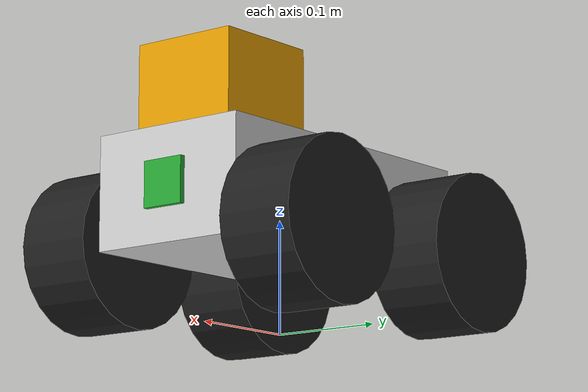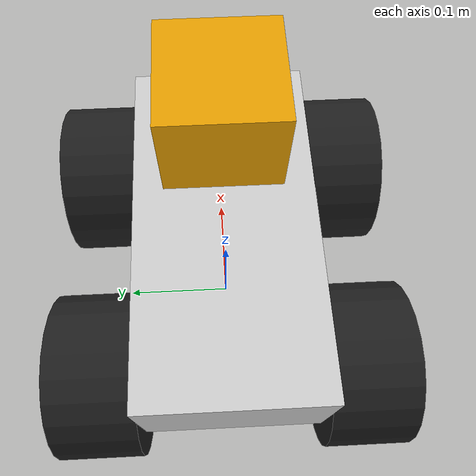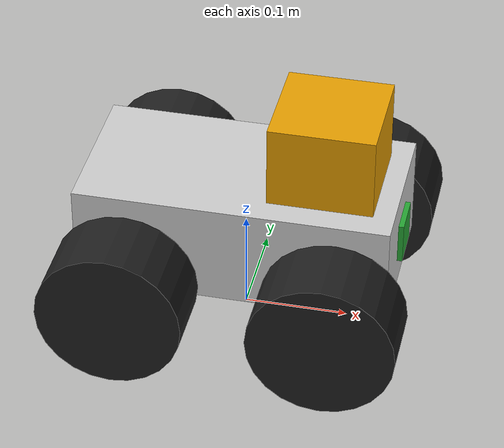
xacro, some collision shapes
<?xml version="1.0"?>
<robot name="my_robot" xmlns:xacro="http://www.ros.org/wiki/xacro">
  <xacro:include filename="$(find mapping_bot)/urdf/my_robot.gazebo"/>
  <xacro:include filename="$(find mapping_bot)/urdf/materials.urdf"/>

  <link name="base_link"></link>

  <joint name="base_link_joint" type="fixed">
    <origin xyz="0 0 0.11" rpy="0 0 0"/>
    <parent link="base_link"/>
    <child link="chassis"/>
  </joint>

  <link name="chassis">
    <pose>0 0 0.11 0 0 0</pose>

    <inertial>
      <mass value="20.0"/>
      <origin xyz="0 0 0" rpy="0 0 0"/>
      <inertia
          ixx="0.0542" ixy="0" ixz="0"
          iyy="0.1667" iyz="0"
          izz="0.1"
      />
    </inertial>

    <collision name="chassis_collision">
      <origin xyz="0 0 0" rpy="0 0 0"/>
      <geometry>
        <box size=".3 .15 .1"/>
      </geometry>
    </collision>

    <visual name="chassis_visual">
      <origin xyz="0 0 0" rpy="0 0 0"/>
      <geometry>
        <box size=".3 .15 .1"/>
      </geometry>
      <material name="light_grey"/>
    </visual>
  </link>

  <joint type="continuous" name="front_left_wheel_joint">
    <origin xyz="0.1 0.11 -0.04" rpy="-1.5707 0 0"/>
    <child link="front_left_wheel"/>
    <parent link="chassis"/>
    <axis xyz="0 0 1" rpy="0 0 0"/>
    <limit effort="10000" velocity="1000"/>
    <dynamics damping="1.0" friction="1.0"/>
  </joint>

  <link name="front_left_wheel">
    <inertial>
      <mass value="3.0"/>
      <origin xyz="0 0 0" rpy="0 0 0"/>
      <inertia
          ixx="0.0049" ixy="0" ixz="0"
          iyy="0.0049" iyz="0"
          izz="0.0074"
      />
    </inertial>

    <collision name="front_left_wheel_collision">
      <origin xyz="0 0 0" rpy="0 0 0"/>
      <geometry>
        <cylinder radius="0.07" length="0.07"/>
      </geometry>
    </collision>

    <visual name="front_left_wheel_visual">
      <origin xyz="0 0 0" rpy="0 0 0"/>
      <geometry>
        <cylinder radius="0.07" length="0.07"/>
      </geometry>
      <material name="black"/>
    </visual>
  </link>

  <joint type="continuous" name="front_right_wheel_joint">
    <origin xyz="0.1 -0.11 -0.04" rpy="-1.5707 0 0"/>
    <child link="front_right_wheel"/>
    <parent link="chassis"/>
    <axis xyz="0 0 1" rpy="0 0 0"/>
    <limit effort="10000" velocity="1000"/>
    <dynamics damping="1.0" friction="1.0"/>
  </joint>

  <link name="front_right_wheel">
    <inertial>
      <mass value="3.0"/>
      <origin xyz="0 0 0" rpy="0 0 0"/>
      <inertia
          ixx="0.0049" ixy="0" ixz="0"
          iyy="0.0049" iyz="0"
          izz="0.0074"
      />
    </inertial>

    <collision name="front_right_wheel_collision">
      <origin xyz="0 0 0" rpy="0 0 0"/>
      <geometry>
        <cylinder radius="0.07" length="0.07"/>
      </geometry>
    </collision>

    <visual name="front_right_wheel_visual">
      <origin xyz="0 0 0" rpy="0 0 0"/>
      <geometry>
        <cylinder radius="0.07" length="0.07"/>
      </geometry>
      <material name="black"/>
    </visual>
  </link>

  <joint type="continuous" name="back_left_wheel_joint">
    <origin xyz="-0.1 0.11 -0.04" rpy="-1.5707 0 0"/>
    <child link="back_left_wheel"/>
    <parent link="chassis"/>
    <axis xyz="0 0 1" rpy="0 0 0"/>
    <limit effort="10000" velocity="1000"/>
    <dynamics damping="1.0" friction="1.0"/>
  </joint>

  <link name="back_left_wheel">
    <inertial>
      <mass value="3.0"/>
      <origin xyz="0 0 0" rpy="0 0 0"/>
      <inertia
          ixx="0.0049" ixy="0" ixz="0"
          iyy="0.0049" iyz="0"
          izz="0.0074"
      />
    </inertial>

    <collision name="back_left_wheel_collision">
      <origin xyz="0 0 0" rpy="0 0 0"/>
      <geometry>
        <cylinder radius="0.07" length="0.07"/>
      </geometry>
    </collision>

    <visual name="back_left_wheel_visual">
      <origin xyz="0 0 0" rpy="0 0 0"/>
      <geometry>
        <cylinder radius="0.07" length="0.07"/>
      </geometry>
      <material name="black"/>
    </visual>
  </link>

  <joint type="continuous" name="back_right_wheel_joint">
    <origin xyz="-0.1 -0.11 -0.04" rpy="-1.5707 0 0"/>
    <child link="back_right_wheel"/>
    <parent link="chassis"/>
    <axis xyz="0 0 1" rpy="0 0 0"/>
    <limit effort="10000" velocity="1000"/>
    <dynamics damping="1.0" friction="1.0"/>
  </joint>

  <link name="back_right_wheel">
    <inertial>
      <mass value="3.0"/>
      <origin xyz="0 0 0" rpy="0 0 0"/>
      <inertia
          ixx="0.0049" ixy="0" ixz="0"
          iyy="0.0049" iyz="0"
          izz="0.0074"
      />
    </inertial>

    <collision name="back_right_wheel_collision">
      <origin xyz="0 0 0" rpy="0 0 0"/>
      <geometry>
        <cylinder radius="0.07" length="0.07"/>
      </geometry>
    </collision>

    <visual name="back_right_wheel_visual">
      <origin xyz="0 0 0" rpy="0 0 0"/>
      <geometry>
        <cylinder radius="0.07" length="0.07"/>
      </geometry>
      <material name="black"/>
    </visual>
  </link>

  <joint type="fixed" name="camera_joint">
    <origin xyz="0.135 0 0" rpy="0 0 0"/>
    <child link="camera"/>
    <parent link="chassis"/>
    <axis xyz="0 1 0" rpy="0 0 0"/>
  </joint>

  <link name="camera">
    <inertial>
      <mass value="0.1"/>
      <origin xyz="0 0 0" rpy="0 0 0"/>
      <box_inertia m="0.1" x="0.04" y="0.04" z="0.04"/>
      <inertia
          ixx="1e-6" ixy="0" ixz="0"
          iyy="1e-6" iyz="0"
          izz="1e-6"
      />
    </inertial>

    <collision name="camera_collision">
      <origin xyz="0 0 0" rpy="0 0 0"/>
      <geometry>
        <box size="0.04 0.04 0.04"/>
      </geometry>
    </collision>

    <visual name="camera_visual">
      <origin xyz="0 0 0" rpy="0 0 0"/>
      <geometry>
        <box size="0.04 0.04 0.04"/>
      </geometry>
      <material name="green"/>
    </visual>
  </link>

  <joint type="fixed" name="camera_optical_joint">
    <origin xyz="0 0 0" rpy="-1.5707 0 -1.5707"/>
    <parent link="camera"/>
    <child link="camera_optical"/>
  </joint>

  <link name="camera_optical">
  </link>

  <joint type="fixed" name="hokuyo_joint">
    <origin xyz="0.08 0 0.08" rpy="0 0 0"/>
    <child link="hokuyo"/>
    <parent link="chassis"/>
    <axis xyz="0 1 0" rpy="0 0 0"/>
  </joint>

  <link name="hokuyo">
    <inertial>
      <mass value="1e-5"/>
      <origin xyz="0 0 0" rpy="0 0 0"/>
      <box_inertia m="0.1" x="0.05" y="0.05" z="0.05"/>
      <inertia
          ixx="1e-6" ixy="0" ixz="0"
          iyy="1e-6" iyz="0"
          izz="1e-6"
      />
    </inertial>

    <collision name="hokuyo_collision">
      <origin xyz="0 0 0" rpy="0 0 0"/>
      <geometry>
        <box size="0.1 0.1 0.1"/>
      </geometry>
    </collision>

    <visual name="hokuyo_visual">
      <origin xyz="0 0 0" rpy="0 0 0"/>
      <geometry>
        <mesh filename="package://mapping_bot/meshes/hokuyo.dae"/>
      </geometry>
    </visual>
  </link>

  <!-- Colors -->
  <gazebo reference="chassis">
      <material>Gazebo/LightGrey</material>
  </gazebo>

  <gazebo reference="front_left_wheel">
      <material>Gazebo/Black</material>
  </gazebo>

  <gazebo reference="front_right_wheel">
      <material>Gazebo/Black</material>
  </gazebo>

  <gazebo reference="back_left_wheel">
      <material>Gazebo/Black</material>
  </gazebo>

  <gazebo reference="back_right_wheel">
      <material>Gazebo/Black</material>
  </gazebo>

  <gazebo reference="camera">
      <material>Gazebo/Green</material>
  </gazebo>
</robot>
